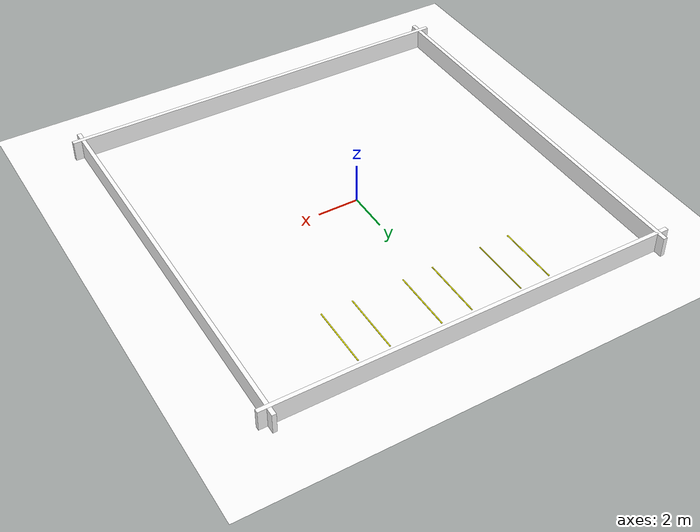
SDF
<?xml version="1.7"?>
<sdf version="1.10">
  <world name="parking_world_forward">

    <light name="sun" type="directional">
      <pose>0 0 10 0 0 0</pose>
      <diffuse>1 1 1 1</diffuse>
      <specular>0.2 0.2 0.2 1</specular>
      <direction>-0.2 -0.3 -1</direction>
      <cast_shadows>false</cast_shadows>
    </light>

    <model name="ground">
      <static>true</static>
      <pose>0 0 0 0 0 0</pose>
      <link name="link">
        <collision name="collision">
          <geometry>
            <plane><normal>0 0 1</normal><size>20 20</size></plane>
          </geometry>
        </collision>
        <visual name="visual">
          <geometry>
            <plane><normal>0 0 1</normal><size>20 20</size></plane>
          </geometry>
          <material>
            <ambient>1 1 1 1</ambient>
            <diffuse>1 1 1 1</diffuse>
            <specular>0.1 0.1 0.1 1</specular>
          </material>
        </visual>
      </link>
    </model>

    <model name="wall_north">
      <static>true</static>
      <pose>0 9.5 0.5 0 0 0</pose>
      <link name="link">
        <collision name="collision">
          <geometry><box><size>20 0.2 1</size></box></geometry>
        </collision>
        <visual name="visual">
          <geometry><box><size>20 0.2 1</size></box></geometry>
          <material><ambient>1 1 1 1</ambient><diffuse>1 1 1 1</diffuse></material>
        </visual>
      </link>
    </model>

    <model name="wall_south">
      <static>true</static>
      <pose>0 -9.5 0.5 0 0 0</pose>
      <link name="link">
        <collision name="collision">
          <geometry><box><size>20 0.2 1</size></box></geometry>
        </collision>
        <visual name="visual">
          <geometry><box><size>20 0.2 1</size></box></geometry>
          <material><ambient>1 1 1 1</ambient><diffuse>1 1 1 1</diffuse></material>
        </visual>
      </link>
    </model>

    <model name="wall_west">
      <static>true</static>
      <pose>-9.5 0 0.5 0 0 0</pose>
      <link name="link">
        <collision name="collision">
          <geometry><box><size>0.2 20 1</size></box></geometry>
        </collision>
        <visual name="visual">
          <geometry><box><size>0.2 20 1</size></box></geometry>
          <material><ambient>1 1 1 1</ambient><diffuse>1 1 1 1</diffuse></material>
        </visual>
      </link>
    </model>

    <model name="wall_east">
      <static>true</static>
      <pose>9.5 0 0.5 0 0 0</pose>
      <link name="link">
        <collision name="collision">
          <geometry><box><size>0.2 20 1</size></box></geometry>
        </collision>
        <visual name="visual">
          <geometry><box><size>0.2 20 1</size></box></geometry>
          <material><ambient>1 1 1 1</ambient><diffuse>1 1 1 1</diffuse></material>
        </visual>
      </link>
    </model>

    <!-- 전진주차 슬롯 3개 (위쪽, 북쪽 벽 앞) -->
    <!-- 각 슬롯 : 세로 노란 라인 2개 (폭 방향 x축 방향으로 떨어진 선) -->
    <!-- y=7 근처에 배치 (로드는 아래쪽) -->

    <!-- 슬롯 1 : x ~ -4 -->
    <model name="forward_slot1_left">
      <static>true</static>
      <pose>-4.5 7 0.01 0 0 0</pose>
      <link name="link">
        <collision name="collision">
          <geometry><box><size>0.05 3 0.02</size></box></geometry>
        </collision>
        <visual name="visual">
          <geometry><box><size>0.05 3 0.02</size></box></geometry>
          <material><ambient>1 1 0 1</ambient><diffuse>1 1 0 1</diffuse></material>
        </visual>
      </link>
    </model>

    <model name="forward_slot1_right">
      <static>true</static>
      <pose>-3.0 7 0.01 0 0 0</pose>
      <link name="link">
        <collision name="collision">
          <geometry><box><size>0.05 3 0.02</size></box></geometry>
        </collision>
        <visual name="visual">
          <geometry><box><size>0.05 3 0.02</size></box></geometry>
          <material><ambient>1 1 0 1</ambient><diffuse>1 1 0 1</diffuse></material>
        </visual>
      </link>
    </model>

    <!-- 슬롯 2 : x ~ 0 -->
    <model name="forward_slot2_left">
      <static>true</static>
      <pose>-0.5 7 0.01 0 0 0</pose>
      <link name="link">
        <collision name="collision">
          <geometry><box><size>0.05 3 0.02</size></box></geometry>
        </collision>
        <visual name="visual">
          <geometry><box><size>0.05 3 0.02</size></box></geometry>
          <material><ambient>1 1 0 1</ambient><diffuse>1 1 0 1</diffuse></material>
        </visual>
      </link>
    </model>

    <model name="forward_slot2_right">
      <static>true</static>
      <pose>1.0 7 0.01 0 0 0</pose>
      <link name="link">
        <collision name="collision">
          <geometry><box><size>0.05 3 0.02</size></box></geometry>
        </collision>
        <visual name="visual">
          <geometry><box><size>0.05 3 0.02</size></box></geometry>
          <material><ambient>1 1 0 1</ambient><diffuse>1 1 0 1</diffuse></material>
        </visual>
      </link>
    </model>

    <!-- 슬롯 3 : x ~ +4 -->
    <model name="forward_slot3_left">
      <static>true</static>
      <pose>3.5 7 0.01 0 0 0</pose>
      <link name="link">
        <collision name="collision">
          <geometry><box><size>0.05 3 0.02</size></box></geometry>
        </collision>
        <visual name="visual">
          <geometry><box><size>0.05 3 0.02</size></box></geometry>
          <material><ambient>1 1 0 1</ambient><diffuse>1 1 0 1</diffuse></material>
        </visual>
      </link>
    </model>

    <model name="forward_slot3_right">
      <static>true</static>
      <pose>5.0 7 0.01 0 0 0</pose>
      <link name="link">
        <collision name="collision">
          <geometry><box><size>0.05 3 0.02</size></box></geometry>
        </collision>
        <visual name="visual">
          <geometry><box><size>0.05 3 0.02</size></box></geometry>
          <material><ambient>1 1 0 1</ambient><diffuse>1 1 0 1</diffuse></material>
        </visual>
      </link>
    </model>

  </world>
</sdf>
